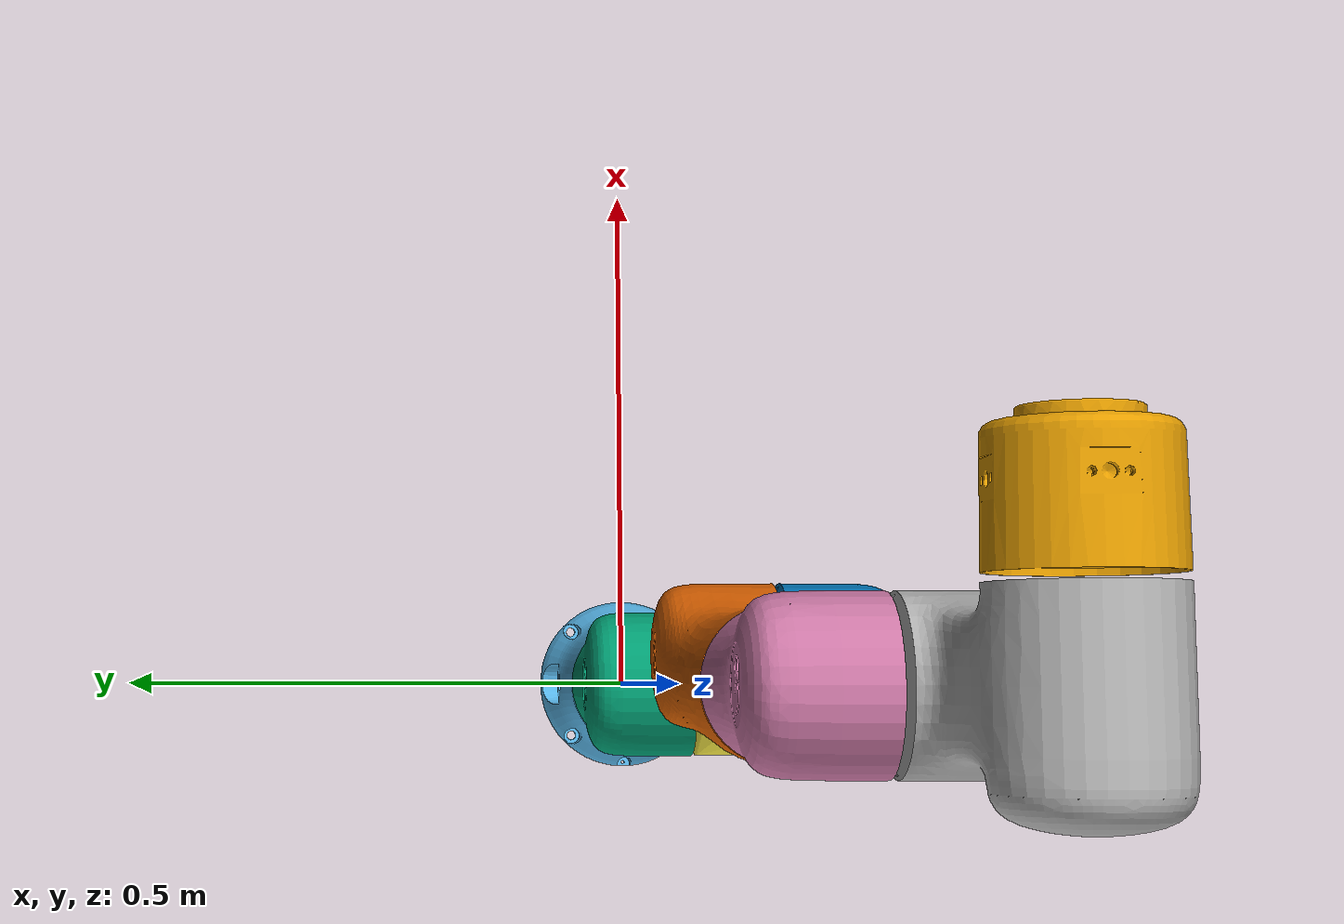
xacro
?xml version="1.0" encoding="utf-8"?>

<robot xmlns:xacro="http://www.ros.org/wiki/xacro" name="rizon4">
  <!-- Enable setting arguments from the launch file -->
  <xacro:arg name="robot_ip" default="" />
  <xacro:arg name="local_ip" default="" />
  <xacro:arg name="rizon_type" default="rizon4"/>
  <xacro:arg name="use_fake_hardware" default="false" />
  <xacro:arg name="fake_sensor_commands" default="false" />
  <xacro:arg name="initial_positions_file" default="$(find flexiv_description)/config/initial_positions.yaml"/>
  <xacro:arg name="prefix" default="" />

  <xacro:include filename="$(find flexiv_description)/urdf/rizon_joints_links.xacro" />
  <xacro:rizon_joints_links rizon_type="$(arg rizon_type)" prefix="$(arg prefix)" mesh_prefix_path="package://flexiv_description/" />

  <xacro:include filename="$(find flexiv_description)/urdf/flexiv_arm_materials.xacro" />
  <xacro:flexiv_arm_materials />

  <xacro:include filename="$(find flexiv_description)/urdf/rizon.ros2_control.xacro"/>
  <xacro:rizon_ros2_control prefix="$(arg prefix)" robot_ip="$(arg robot_ip)" local_ip="$(arg local_ip)" use_fake_hardware="$(arg use_fake_hardware)" fake_sensor_commands="$(arg fake_sensor_commands)" initial_positions_file="$(arg initial_positions_file)"/>

  <!-- Used for fixing robot -->

</robot>

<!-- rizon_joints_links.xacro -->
<robot xmlns:xacro="http://www.ros.org/wiki/xacro">

  <!--
    rizon_type = "rizon4", "rizon4s"
    prefix = "", "left_"
    mesh_prefix_path = "", "package://flexiv_description/"
    NOTE: accurate kinematic but approximated dynamics parameters
  -->
  <xacro:macro name="rizon_joints_links" params="rizon_type prefix mesh_prefix_path">

    <!-- JOINTS-->
    <joint name="${prefix}base_joint" type="fixed">
      <parent link="world"/>
      <child link="${prefix}base_link" />
      <origin xyz="0.0 0.0 0.0" rpy="0.0 0.0 0.0"/>
    </joint>

    <joint name="${prefix}joint1" type="revolute">
      <parent link="${prefix}base_link"/>
      <child link="${prefix}link1"/>
      <origin xyz="0.0 0.0 0.155" rpy="0 0 ${pi}"/>
      <axis xyz="0 0 1"/>
      <limit effort="123" lower="-2.7925" upper="2.7925" velocity="2.0944"/>
    </joint>

    <joint name="${prefix}joint2" type="revolute">
      <parent link="${prefix}link1"/>
      <child link="${prefix}link2"/>
      <origin xyz="0.0 0.03 0.210" rpy="0 0 0"/>
      <axis xyz="0 1 0"/>
      <limit effort="123" lower="-2.2689" upper="2.2689" velocity="2.0944"/>
    </joint>

    <joint name="${prefix}joint3" type="revolute">
      <parent link="${prefix}link2"/>
      <child link="${prefix}link3"/>
      <origin xyz="0.0 0.035 0.205" rpy="0 0 0"/>
      <axis xyz="0 0 1"/>
      <limit effort="64" lower="-2.9671" upper="2.9671" velocity="2.4435"/>
    </joint>

    <joint name="${prefix}joint4" type="revolute">
      <parent link="${prefix}link3"/>
      <child link="${prefix}link4"/>
      <origin xyz="-0.02 -0.03 0.19" rpy="0 0 ${-pi}"/>
      <axis xyz="0 1 0"/>
      <limit effort="64" lower="-1.8675" upper="2.6878" velocity="2.4435" />
    </joint>

    <joint name="${prefix}joint5" type="revolute">
      <parent link="${prefix}link4"/>
      <child link="${prefix}link5"/>
      <origin xyz="-0.02 0.025 0.195" rpy="0 0 ${-pi}"/>
      <axis xyz="0 0 1"/>
      <limit effort="39" lower="-2.9671" upper="2.9671" velocity="4.8869" />
    </joint>

    <joint name="${prefix}joint6" type="revolute">
      <parent link="${prefix}link5"/>
      <child link="${prefix}link6"/>
      <origin xyz="0.0 0.03 0.19" rpy="0 0 0"/>
      <axis xyz="0 1 0"/>
      <limit effort="39" lower="-1.3963" upper="4.5379" velocity="4.8869" />
    </joint>

    <joint name="${prefix}joint7" type="revolute">
      <parent link="${prefix}link6"/>
      <child link="${prefix}link7"/>
      <origin xyz="-0.055 0.070 0.11" rpy="0 ${-pi/2} 0"/>
      <axis xyz="0 0 1"/>
      <limit effort="39" lower="-2.9671" upper="2.9671" velocity="4.8869" />
    </joint>

    <joint name="${prefix}link7_to_flange" type="fixed">
      <parent link="${prefix}link7"/>
      <child link="${prefix}flange"/>
      <xacro:if value="${rizon_type=='rizon4'}">
        <origin xyz="0.0 0.0 0.081" rpy="0 0 ${-pi}"/>
      </xacro:if>
      <xacro:if value="${rizon_type=='rizon4s'}">
        <origin xyz="0.0 0.0 0.124" rpy="0 0 ${-pi}"/>
      </xacro:if>
    </joint>

    <!-- LINKS -->
    <link name="world">
    </link>

    <link name="${prefix}base_link">
      <inertial>
        <mass value="3.7" />
        <origin rpy="0 0 0" xyz="0.0 -0.0 0.09" />
        <inertia ixx="0.019" ixy="0.0" ixz="0.0" iyy="0.02" iyz="0.0" izz="0.009" />
      </inertial>
      <visual>
        <origin xyz="0 0 0" rpy="0 0 0"/>
        <geometry>
          <mesh filename="${mesh_prefix_path}meshes/${rizon_type}/visual/link0.obj" />
        </geometry>
      </visual>
      <collision>
        <origin xyz="0 0 0" rpy="0 0 0"/>
        <geometry>
          <mesh filename="${mesh_prefix_path}meshes/${rizon_type}/collision/link0.stl" />
        </geometry>
      </collision>
    </link>

    <link name="${prefix}link1">
      <inertial>
        <mass value="3.7" />
        <origin rpy="0 0 0" xyz="0.0 0.01 0.15" />
        <inertia ixx="0.028" ixy="0.0" ixz="0.0" iyy="0.027" iyz="0.002" izz="0.008" />
      </inertial>
      <visual>
        <origin xyz="0 0 0" rpy="0 0 0" />
        <geometry>
          <mesh filename="${mesh_prefix_path}meshes/${rizon_type}/visual/link1.obj" />
        </geometry>
      </visual>
      <collision>
        <origin xyz="0 0 0" rpy="0 0 0" />
        <geometry>
          <mesh filename="${mesh_prefix_path}meshes/${rizon_type}/collision/link1.stl" />
        </geometry>
      </collision>
    </link>

    <link name="${prefix}link2">
      <inertial>
        <mass value="2.7" />
        <origin rpy="0 0 0" xyz="0.0 0.04 0.1" />
        <inertia ixx="0.023" ixy="0.0" ixz="0.0" iyy="0.024" iyz="-0.0" izz="0.004" />
      </inertial>
      <visual>
        <origin xyz="0 0 0" rpy="0 0 0"/>
        <geometry>
          <mesh filename="${mesh_prefix_path}meshes/${rizon_type}/visual/link2.obj" />
        </geometry>
      </visual>
      <collision>
        <origin xyz="0 0 0" rpy="0 0 0"/>
        <geometry>
          <mesh filename="${mesh_prefix_path}meshes/${rizon_type}/collision/link2.stl" />
        </geometry>
      </collision>
    </link>

    <link name="${prefix}link3">
      <inertial>
        <mass value="2.4" />
        <origin rpy="0 0 0" xyz="-0.01 -0.0 0.13" />
        <inertia ixx="0.014" ixy="0.0" ixz="-0.001" iyy="0.014" iyz="-0.001" izz="0.004" />
      </inertial>
      <visual>
        <origin xyz="0 0 0" rpy="0 0 0" />
        <geometry>
          <mesh filename="${mesh_prefix_path}meshes/${rizon_type}/visual/link3.obj" />
        </geometry>
      </visual>
      <collision>
        <origin xyz="0 0 0" rpy="0 0 0" />
        <geometry>
          <mesh filename="${mesh_prefix_path}meshes/${rizon_type}/collision/link3.stl" />
        </geometry>
      </collision>
    </link>

    <link name="${prefix}link4">
      <inertial>
        <mass value="2.4" />
        <origin rpy="0 0 0" xyz="-0.01 0.03 0.1" />
        <inertia ixx="0.018" ixy="0.0" ixz="-0.002" iyy="0.019" iyz="-0.001" izz="0.003" />
      </inertial>
      <visual>
        <origin xyz="0 0 0" rpy="0 0 0"/>
        <geometry>
          <mesh filename="${mesh_prefix_path}meshes/${rizon_type}/visual/link4.obj" />
        </geometry>
      </visual>
      <collision>
        <origin xyz="0 0 0" rpy="0 0 0"/>
        <geometry>
          <mesh filename="${mesh_prefix_path}meshes/${rizon_type}/collision/link4.stl" />
        </geometry>
      </collision>
    </link>

    <link name="${prefix}link5">
      <inertial>
        <mass value="2.4" />
        <origin rpy="0 0 0" xyz="0.0 0.0 0.13" />
        <inertia ixx="0.014" ixy="0.0" ixz="0.0" iyy="0.013" iyz="0.001" izz="0.004" />
      </inertial>
      <visual>
        <origin xyz="0 0 0" rpy="0 0 0"/>
        <geometry>
          <mesh filename="${mesh_prefix_path}meshes/${rizon_type}/visual/link5.obj" />
        </geometry>
      </visual>
      <collision>
        <origin xyz="0 0 0" rpy="0 0 0"/>
        <geometry>
          <mesh filename="${mesh_prefix_path}meshes/${rizon_type}/collision/link5.stl" />
        </geometry>
      </collision>
    </link>

    <link name="${prefix}link6">
      <inertial>
        <mass value="2.1" />
        <origin rpy="0 0 0" xyz="-0.01 0.06 0.07" />
        <inertia ixx="0.008" ixy="-0.0" ixz="-0.001" iyy="0.009" iyz="0.002" izz="0.004" />
      </inertial>
      <visual>
        <origin xyz="0 0 0" rpy="0 0 0"/>
        <geometry>
          <mesh filename="${mesh_prefix_path}meshes/${rizon_type}/visual/link6.obj" />
        </geometry>
      </visual>
      <collision>
        <origin xyz="0 0 0" rpy="0 0 0"/>
        <geometry>
          <mesh filename="${mesh_prefix_path}meshes/${rizon_type}/collision/link6.stl" />
        </geometry>
      </collision>
    </link>

    <link name="${prefix}link7">
      <xacro:if value="${rizon_type=='rizon4'}">
        <inertial>
          <mass value="0.8" />
          <origin rpy="0 0 0" xyz="0.0 0.0 0.03" />
          <inertia ixx="0.001" ixy="0.0" ixz="0.0" iyy="0.001" iyz="0.0" izz="0.001" />
        </inertial>
        <visual>
          <origin xyz="0 0 0" rpy="0 0 0"/>
          <geometry>
            <mesh filename="${mesh_prefix_path}meshes/${rizon_type}/visual/link7.obj" />
          </geometry>
        </visual>
        <collision>
          <origin xyz="0 0 0" rpy="0 0 0"/>
          <geometry>
            <mesh filename="${mesh_prefix_path}meshes/${rizon_type}/collision/link7.stl" />
          </geometry>
        </collision>
      </xacro:if>
      <xacro:if value="${rizon_type=='rizon4s'}">
        <inertial>
          <mass value="1.4" />
          <origin xyz="0.0 0.0 0.05" rpy="0 0 0"/>
          <inertia ixx="0.003" iyy="0.003" izz="0.002" ixy="0.0" ixz="0.0" iyz="0.0"/>
        </inertial>
        <visual>
          <origin xyz="0 0 0" rpy="0 0 0"/>
          <geometry>
            <mesh filename="${mesh_prefix_path}meshes/${rizon_type}/visual/link7.obj" />
          </geometry>
        </visual>
        <collision>
          <origin xyz="0 0 0" rpy="0 0 0"/>
          <geometry>
            <mesh filename="${mesh_prefix_path}meshes/${rizon_type}/collision/link7.stl" />
          </geometry>
        </collision>
      </xacro:if>
    </link>

    <link name="${prefix}flange"/>

  </xacro:macro>

</robot>

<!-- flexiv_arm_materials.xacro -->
<robot xmlns:xacro="http://www.ros.org/wiki/xacro">

  <xacro:macro name="flexiv_arm_materials">

    <material name="rizon_blue">
      <color rgba="0.0 0.0 1.0 0.5"/>
    </material>
    <material name="rizon_light_grey">
      <color rgba="0.7 0.7 0.7 1.0"/>
    </material>
    <material name="rizon_dark_grey">
      <color rgba="0.4 0.4 0.4 1.0"/>
    </material>
    <material name="rizon_white">
      <color rgba="1.0 1.0 1.0 1.0"/>
    </material>

  </xacro:macro>

</robot>
